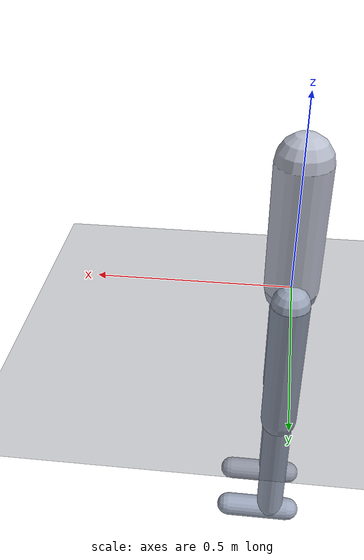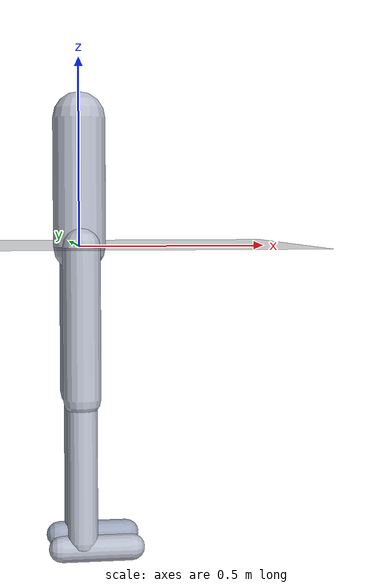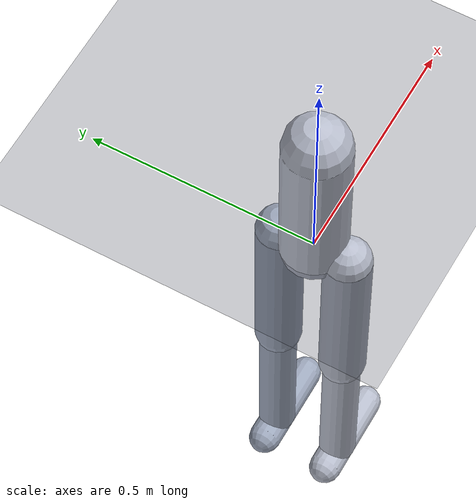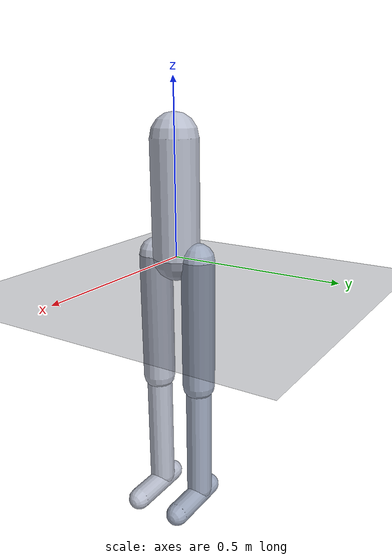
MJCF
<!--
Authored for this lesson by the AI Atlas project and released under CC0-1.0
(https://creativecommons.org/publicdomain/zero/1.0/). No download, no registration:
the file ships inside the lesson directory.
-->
<mujoco model="atlas_planar_walker">
  <compiler angle="radian" autolimits="true"/>

  <option timestep="0.003" integrator="implicitfast" gravity="0 0 -9.81"/>

  <visual>
    <rgba haze="0.15 0.25 0.35 1"/>
    <global elevation="-15" azimuth="90"/>
  </visual>

  <default>
    <geom type="capsule" condim="3" friction="1.0 0.05 0.05" density="1000"
          solimp="0.95 0.99 0.003" solref="0.01 1" rgba="0.72 0.74 0.80 1"/>
    <joint type="hinge" axis="0 1 0" damping="0.6" armature="0.02"/>
    <position ctrllimited="true" forcelimited="true" forcerange="-150 150" kp="180" kv="8"/>
  </default>

  <worldbody>
    <light pos="0 0 3" dir="0 0 -1" diffuse="0.8 0.8 0.8"/>
    <geom name="floor" type="plane" size="40 2 0.1" pos="0 0 0" rgba="0.26 0.28 0.33 1"
          condim="3" friction="1.0 0.05 0.05"/>

    <body name="torso" pos="0 0 0">
      <joint name="root_x" type="slide" axis="1 0 0" limited="false" damping="0" armature="0"/>
      <joint name="root_z" type="slide" axis="0 0 1" limited="false" damping="0" armature="0"/>
      <joint name="root_pitch" type="hinge" axis="0 1 0" limited="false" damping="0" armature="0"/>
      <geom name="torso_geom" fromto="0 0 0 0 0 0.34" size="0.07"/>
      <site name="hip_centre" pos="0 0 0" size="0.02"/>

      <body name="thigh_r" pos="0 -0.075 0">
        <joint name="hip_r" range="-0.95 0.95"/>
        <geom name="thigh_r_geom" fromto="0 0 0 0 0 -0.40" size="0.05"/>
        <body name="shin_r" pos="0 0 -0.40">
          <joint name="knee_r" range="-1.60 0.0"/>
          <geom name="shin_r_geom" fromto="0 0 0 0 0 -0.38" size="0.04"/>
          <geom name="foot_r_geom" fromto="-0.055 0 -0.40 0.13 0 -0.40" size="0.035"/>
        </body>
      </body>

      <body name="thigh_l" pos="0 0.075 0">
        <joint name="hip_l" range="-0.95 0.95"/>
        <geom name="thigh_l_geom" fromto="0 0 0 0 0 -0.40" size="0.05" rgba="0.62 0.66 0.74 1"/>
        <body name="shin_l" pos="0 0 -0.40">
          <joint name="knee_l" range="-1.60 0.0"/>
          <geom name="shin_l_geom" fromto="0 0 0 0 0 -0.38" size="0.04" rgba="0.62 0.66 0.74 1"/>
          <geom name="foot_l_geom" fromto="-0.055 0 -0.40 0.13 0 -0.40" size="0.035"
                rgba="0.62 0.66 0.74 1"/>
        </body>
      </body>
    </body>
  </worldbody>

  <actuator>
    <position name="hip_r_act" joint="hip_r" ctrlrange="-0.95 0.95"/>
    <position name="knee_r_act" joint="knee_r" ctrlrange="-1.60 0.0"/>
    <position name="hip_l_act" joint="hip_l" ctrlrange="-0.95 0.95"/>
    <position name="knee_l_act" joint="knee_l" ctrlrange="-1.60 0.0"/>
  </actuator>

  <keyframe>
    <!-- One leg forward, one leg trailing with a bent knee: a plausible mid-stride pose.
         qpos[1] = 0.80 puts the leading foot a few millimetres above the floor. -->
    <key name="stride_start" qpos="0 0.80 0 0.30 -0.05 -0.30 -0.35"/>
  </keyframe>
</mujoco>
